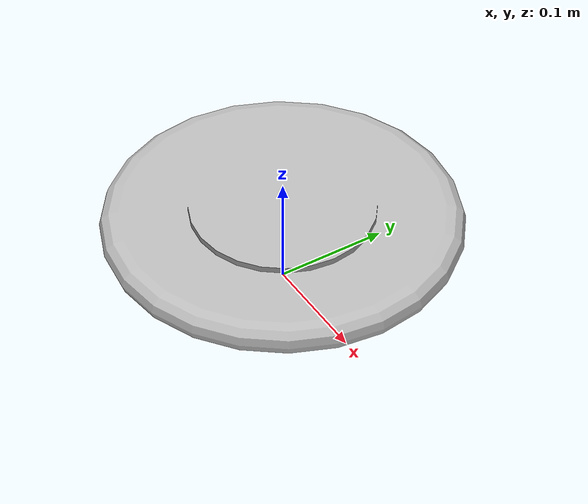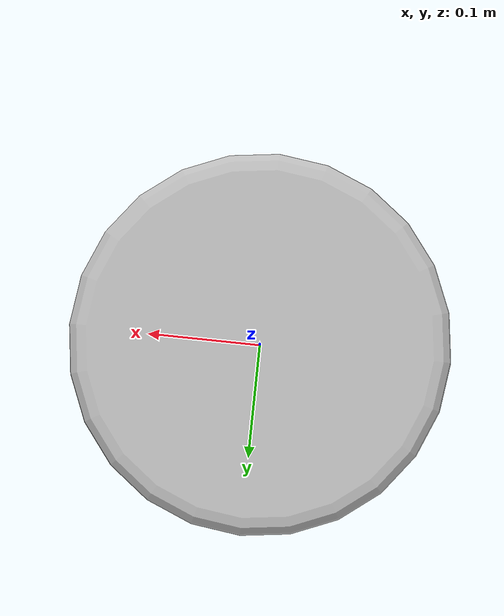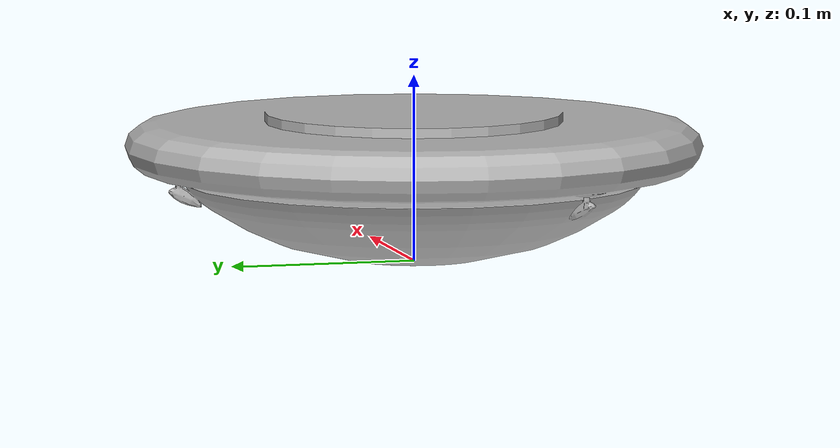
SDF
<?xml version='1.0'?>
<sdf version='1.4'>
  <model name='s__487'>
    <pose>0 0 0 0 0 0</pose>
    <static>true</static>
    <link name='link'>
      <collision name='collision'>
        <pose>0 0 0 0 0 0</pose>
        <geometry>
          <box>
            <size>0.31 0.31 0</size>
          </box>
        </geometry>
      </collision>
      <visual name='visual'>
        <pose>0 0 0 0 0 0</pose>
        <geometry>
          <mesh><uri>model://s__487/s__487.dae</uri></mesh>
        </geometry>
      </visual>
    </link>
  </model>
</sdf>
